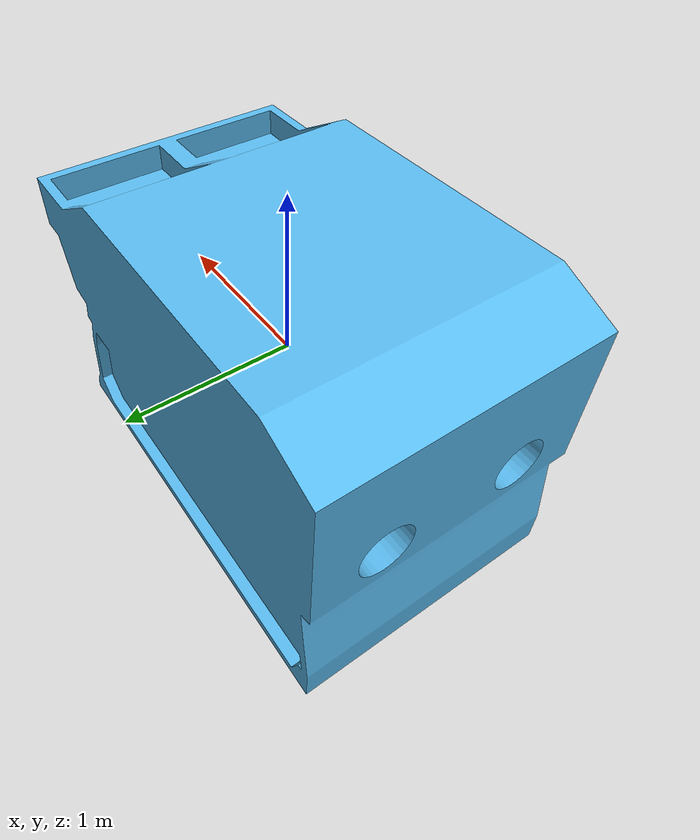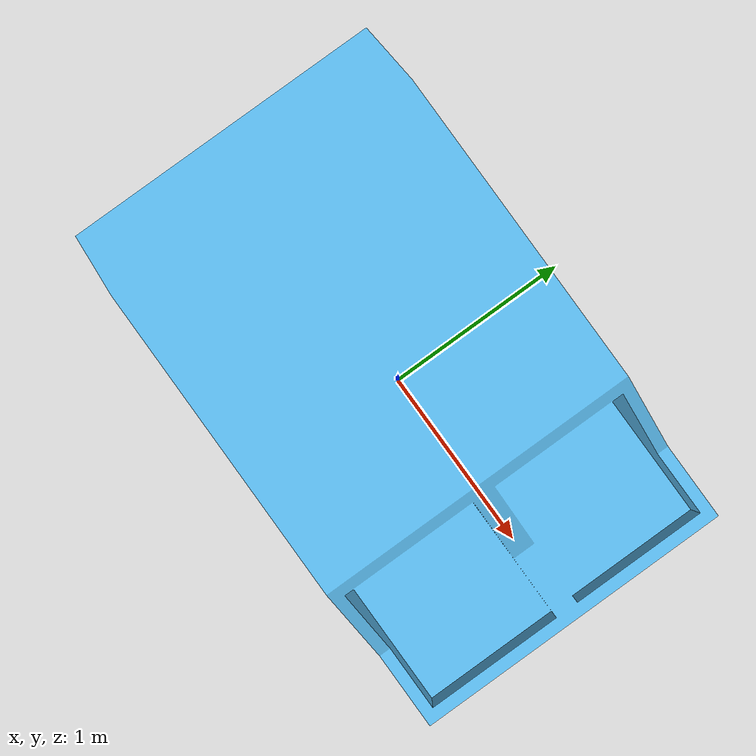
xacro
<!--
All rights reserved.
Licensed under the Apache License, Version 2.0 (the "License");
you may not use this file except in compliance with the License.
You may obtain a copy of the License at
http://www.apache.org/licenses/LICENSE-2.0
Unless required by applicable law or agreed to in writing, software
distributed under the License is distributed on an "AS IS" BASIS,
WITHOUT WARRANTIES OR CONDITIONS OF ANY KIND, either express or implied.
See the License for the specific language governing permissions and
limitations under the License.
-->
<?xml version="1.0"?>

<robot name="caldus" xmlns:xacro="http://www.ros.org/wiki/xacro" >

  <xacro:arg name="debug" default="0"/>
  <xacro:arg name="namespace" default="caldus"/>

  <!-- "Dummy" base link to eliminate root link inertia warning -->
  <link name="$(arg namespace)/base_link"/>

  <link name="$(arg namespace)/caldus_link">
    <!-- Mass and inertia from the Oceaneering eNovus technical specifications:
         https://www.oceaneering.com/datasheets/ROV-eNovus.pdf -->
    <inertial>
      <origin xyz="0 0 0" rpy="0 0 0"/>
      <mass value="3400.0"/>
      <inertia
        ixx="1643.3" ixy="0.0" ixz="0.0"
        iyy="2983.5" iyz="0.0"
        izz="2790.8"/>
    </inertial>
    <visual>
      <origin xyz="0 0 -0.9" rpy="0 0 1.5708"/>
      <geometry>
        <mesh filename="package://caldus_description/meshes/caldus.dae" scale="1 1 1"/>
      </geometry>
    </visual>
    <collision>
      <origin xyz="0 0 -0.9" rpy="0 0 1.5708"/>
      <geometry>
        <mesh filename="package://caldus_description/meshes/caldus_collision.dae" scale="1 1 1"/>
      </geometry>
    </collision>
  </link>

  <!-- Attach caldus_link to the dummy base link -->
  <joint name="$(arg namespace)/caldus_base_joint" type="fixed">
    <origin xyz="0 0 0" rpy="0 0 0"/>  <!-- X-fwd, Y-lft, Z-up (ick!) -->
    <parent link="$(arg namespace)/base_link"/>
    <child link="$(arg namespace)/caldus_link"/>
  </joint>
</robot>

    <!-- "Dummy" base link to eliminate root link inertia warning -->

        <!-- Values loosely based on https://www.mbari.org/at-sea/vehicles/remotely-operated-vehicles/rov-docricketts-specifications-2/ -->
        <!-- Inertia values based on uniform mass distribution -->
